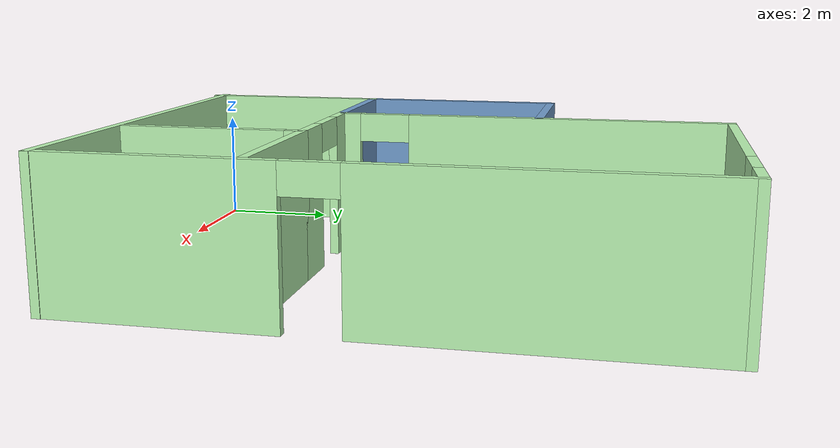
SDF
<?xml version='1.0'?>
<sdf version='1.6'>
  <model name='Kanaloa_Lab_v2'>
    <pose frame=''>3.77022 4.85008 0 0 -0 0</pose>
    <link name='Wall_11'>
      <pose frame=''>-0.155222 -1.75008 0 0 -0 0</pose>
      <visual name='Wall_11_Visual_0'>
        <pose frame=''>-0.911457 0 1.25 0 -0 0</pose>
        <geometry>
          <box>
            <size>0.677085 0.15 2.5</size>
          </box>
        </geometry>
        <material>
          <script>
            <uri>file://media/materials/scripts/gazebo.material</uri>
            <name>Gazebo/Grey</name>
          </script>
          <ambient>0.741176 0.972549 0.709804 1</ambient>
        </material>
        <meta>
          <layer>0</layer>
        </meta>
      </visual>
      <collision name='Wall_11_Collision_0'>
        <geometry>
          <box>
            <size>0.677085 0.15 2.5</size>
          </box>
        </geometry>
        <pose frame=''>-0.911457 0 1.25 0 -0 0</pose>
      </collision>
      <visual name='Wall_11_Visual_1'>
        <pose frame=''>0.788543 0 1.25 0 -0 0</pose>
        <geometry>
          <box>
            <size>0.922915 0.15 2.5</size>
          </box>
        </geometry>
        <material>
          <script>
            <uri>file://media/materials/scripts/gazebo.material</uri>
            <name>Gazebo/Grey</name>
          </script>
          <ambient>0.741176 0.972549 0.709804 1</ambient>
        </material>
        <meta>
          <layer>0</layer>
        </meta>
      </visual>
      <collision name='Wall_11_Collision_1'>
        <geometry>
          <box>
            <size>0.922915 0.15 2.5</size>
          </box>
        </geometry>
        <pose frame=''>0.788543 0 1.25 0 -0 0</pose>
      </collision>
      <visual name='Wall_11_Visual_2'>
        <pose frame=''>-0.122915 0 2.25 0 -0 0</pose>
        <geometry>
          <box>
            <size>0.9 0.15 0.5</size>
          </box>
        </geometry>
        <material>
          <script>
            <uri>file://media/materials/scripts/gazebo.material</uri>
            <name>Gazebo/Grey</name>
          </script>
          <ambient>0.741176 0.972549 0.709804 1</ambient>
        </material>
        <meta>
          <layer>0</layer>
        </meta>
      </visual>
      <collision name='Wall_11_Collision_2'>
        <geometry>
          <box>
            <size>0.9 0.15 0.5</size>
          </box>
        </geometry>
        <pose frame=''>-0.122915 0 2.25 0 -0 0</pose>
      </collision>
    </link>
    <link name='Wall_12'>
      <pose frame=''>1.01978 -3.30008 0 0 -0 -1.5708</pose>
      <visual name='Wall_12_Visual_0'>
        <pose frame=''>-1.44127 0 1.25 0 -0 0</pose>
        <geometry>
          <box>
            <size>0.367459 0.15 2.5</size>
          </box>
        </geometry>
        <material>
          <script>
            <uri>file://media/materials/scripts/gazebo.material</uri>
            <name>Gazebo/Grey</name>
          </script>
          <ambient>0.741176 0.972549 0.709804 1</ambient>
        </material>
        <meta>
          <layer>0</layer>
        </meta>
      </visual>
      <collision name='Wall_12_Collision_0'>
        <geometry>
          <box>
            <size>0.367459 0.15 2.5</size>
          </box>
        </geometry>
        <pose frame=''>-1.44127 0 1.25 0 -0 0</pose>
      </collision>
      <visual name='Wall_12_Visual_1'>
        <pose frame=''>0.63373 0 1.25 0 -0 0</pose>
        <geometry>
          <box>
            <size>1.98254 0.15 2.5</size>
          </box>
        </geometry>
        <material>
          <script>
            <uri>file://media/materials/scripts/gazebo.material</uri>
            <name>Gazebo/Grey</name>
          </script>
          <ambient>0.741176 0.972549 0.709804 1</ambient>
        </material>
        <meta>
          <layer>0</layer>
        </meta>
      </visual>
      <collision name='Wall_12_Collision_1'>
        <geometry>
          <box>
            <size>1.98254 0.15 2.5</size>
          </box>
        </geometry>
        <pose frame=''>0.63373 0 1.25 0 -0 0</pose>
      </collision>
      <visual name='Wall_12_Visual_2'>
        <pose frame=''>-0.807541 0 2.25 0 -0 0</pose>
        <geometry>
          <box>
            <size>0.9 0.15 0.5</size>
          </box>
        </geometry>
        <material>
          <script>
            <uri>file://media/materials/scripts/gazebo.material</uri>
            <name>Gazebo/Grey</name>
          </script>
          <ambient>0.741176 0.972549 0.709804 1</ambient>
        </material>
        <meta>
          <layer>0</layer>
        </meta>
      </visual>
      <collision name='Wall_12_Collision_2'>
        <geometry>
          <box>
            <size>0.9 0.15 0.5</size>
          </box>
        </geometry>
        <pose frame=''>-0.807541 0 2.25 0 -0 0</pose>
      </collision>
    </link>
    <link name='Wall_14'>
      <collision name='Wall_14_Collision'>
        <geometry>
          <box>
            <size>3.75 0.15 2.5</size>
          </box>
        </geometry>
        <pose frame=''>0 0 1.25 0 -0 0</pose>
      </collision>
      <visual name='Wall_14_Visual'>
        <pose frame=''>0 0 1.25 0 -0 0</pose>
        <geometry>
          <box>
            <size>3.75 0.15 2.5</size>
          </box>
        </geometry>
        <material>
          <script>
            <uri>file://media/materials/scripts/gazebo.material</uri>
            <name>Gazebo/Grey</name>
          </script>
          <ambient>0.447059 0.623529 0.811765 1</ambient>
        </material>
        <meta>
          <layer>0</layer>
        </meta>
      </visual>
      <pose frame=''>-3.68022 0.049917 0 0 -0 1.5708</pose>
    </link>
    <link name='Wall_15'>
      <collision name='Wall_15_Collision'>
        <geometry>
          <box>
            <size>2.5 0.15 2.5</size>
          </box>
        </geometry>
        <pose frame=''>0 0 1.25 0 -0 0</pose>
      </collision>
      <visual name='Wall_15_Visual'>
        <pose frame=''>0 0 1.25 0 -0 0</pose>
        <geometry>
          <box>
            <size>2.5 0.15 2.5</size>
          </box>
        </geometry>
        <material>
          <script>
            <uri>file://media/materials/scripts/gazebo.material</uri>
            <name>Gazebo/Grey</name>
          </script>
          <ambient>0.447059 0.623529 0.811765 1</ambient>
        </material>
        <meta>
          <layer>0</layer>
        </meta>
      </visual>
      <pose frame=''>-2.50522 1.84992 0 0 -0 0</pose>
    </link>
    <link name='Wall_17'>
      <collision name='Wall_17_Collision'>
        <geometry>
          <box>
            <size>2.75 0.15 2.5</size>
          </box>
        </geometry>
        <pose frame=''>0 0 1.25 0 -0 0</pose>
      </collision>
      <visual name='Wall_17_Visual'>
        <pose frame=''>0 0 1.25 0 -0 0</pose>
        <geometry>
          <box>
            <size>2.75 0.15 2.5</size>
          </box>
        </geometry>
        <material>
          <script>
            <uri>file://media/materials/scripts/gazebo.material</uri>
            <name>Gazebo/Grey</name>
          </script>
          <ambient>0.741176 0.972549 0.709804 1</ambient>
        </material>
        <meta>
          <layer>0</layer>
        </meta>
      </visual>
      <pose frame=''>2.31978 -1.75008 0 0 -0 0</pose>
    </link>
    <link name='Wall_4'>
      <collision name='Wall_4_Collision'>
        <geometry>
          <box>
            <size>7.71 0.15 2.5</size>
          </box>
        </geometry>
        <pose frame=''>0 0 1.25 0 -0 0</pose>
      </collision>
      <visual name='Wall_4_Visual'>
        <pose frame=''>0 0 1.25 0 -0 0</pose>
        <geometry>
          <box>
            <size>7.71 0.15 2.5</size>
          </box>
        </geometry>
        <material>
          <script>
            <uri>file://media/materials/scripts/gazebo.material</uri>
            <name>Gazebo/Grey</name>
          </script>
          <ambient>0.741176 0.972549 0.709804 1</ambient>
        </material>
        <meta>
          <layer>0</layer>
        </meta>
      </visual>
      <pose frame=''>0 -4.98986 0 0 -0 0</pose>
    </link>
    <link name='Wall_5'>
      <pose frame=''>3.76978 0.055028 0 0 -0 1.5708</pose>
      <visual name='Wall_5_Visual_0'>
        <pose frame=''>-3.19311 0 1.25 0 -0 0</pose>
        <geometry>
          <box>
            <size>3.85389 0.15 2.5</size>
          </box>
        </geometry>
        <material>
          <script>
            <uri>file://media/materials/scripts/gazebo.material</uri>
            <name>Gazebo/Grey</name>
          </script>
          <ambient>0.741176 0.972549 0.709804 1</ambient>
        </material>
        <meta>
          <layer>0</layer>
        </meta>
      </visual>
      <collision name='Wall_5_Collision_0'>
        <geometry>
          <box>
            <size>3.85389 0.15 2.5</size>
          </box>
        </geometry>
        <pose frame=''>-3.19311 0 1.25 0 -0 0</pose>
      </collision>
      <visual name='Wall_5_Visual_1'>
        <pose frame=''>2.37694 0 1.25 0 -0 0</pose>
        <geometry>
          <box>
            <size>5.48622 0.15 2.5</size>
          </box>
        </geometry>
        <material>
          <script>
            <uri>file://media/materials/scripts/gazebo.material</uri>
            <name>Gazebo/Grey</name>
          </script>
          <ambient>0.741176 0.972549 0.709804 1</ambient>
        </material>
        <meta>
          <layer>0</layer>
        </meta>
      </visual>
      <collision name='Wall_5_Collision_1'>
        <geometry>
          <box>
            <size>5.48622 0.15 2.5</size>
          </box>
        </geometry>
        <pose frame=''>2.37694 0 1.25 0 -0 0</pose>
      </collision>
      <visual name='Wall_5_Visual_2'>
        <pose frame=''>-0.81617 0 2.25 0 -0 0</pose>
        <geometry>
          <box>
            <size>0.9 0.15 0.5</size>
          </box>
        </geometry>
        <material>
          <script>
            <uri>file://media/materials/scripts/gazebo.material</uri>
            <name>Gazebo/Grey</name>
          </script>
          <ambient>0.741176 0.972549 0.709804 1</ambient>
        </material>
        <meta>
          <layer>0</layer>
        </meta>
      </visual>
      <collision name='Wall_5_Collision_2'>
        <geometry>
          <box>
            <size>0.9 0.15 0.5</size>
          </box>
        </geometry>
        <pose frame=''>-0.81617 0 2.25 0 -0 0</pose>
      </collision>
    </link>
    <link name='Wall_6'>
      <pose frame=''>1.21978 5.09992 0 0 -0 3.14159</pose>
      <visual name='Wall_6_Visual_0'>
        <pose frame=''>-2.20984 0 1.25 0 -0 0</pose>
        <geometry>
          <box>
            <size>0.830327 0.15 2.5</size>
          </box>
        </geometry>
        <material>
          <script>
            <uri>file://media/materials/scripts/gazebo.material</uri>
            <name>Gazebo/Grey</name>
          </script>
          <ambient>0.741176 0.972549 0.709804 1</ambient>
        </material>
        <meta>
          <layer>0</layer>
        </meta>
      </visual>
      <collision name='Wall_6_Collision_0'>
        <geometry>
          <box>
            <size>0.830327 0.15 2.5</size>
          </box>
        </geometry>
        <pose frame=''>-2.20984 0 1.25 0 -0 0</pose>
      </collision>
      <visual name='Wall_6_Visual_1'>
        <pose frame=''>0.865164 0 1.25 0 -0 0</pose>
        <geometry>
          <box>
            <size>3.51967 0.15 2.5</size>
          </box>
        </geometry>
        <material>
          <script>
            <uri>file://media/materials/scripts/gazebo.material</uri>
            <name>Gazebo/Grey</name>
          </script>
          <ambient>0.741176 0.972549 0.709804 1</ambient>
        </material>
        <meta>
          <layer>0</layer>
        </meta>
      </visual>
      <collision name='Wall_6_Collision_1'>
        <geometry>
          <box>
            <size>3.51967 0.15 2.5</size>
          </box>
        </geometry>
        <pose frame=''>0.865164 0 1.25 0 -0 0</pose>
      </collision>
      <visual name='Wall_6_Visual_2'>
        <pose frame=''>-1.34467 0 2.25 0 -0 0</pose>
        <geometry>
          <box>
            <size>0.9 0.15 0.5</size>
          </box>
        </geometry>
        <material>
          <script>
            <uri>file://media/materials/scripts/gazebo.material</uri>
            <name>Gazebo/Grey</name>
          </script>
          <ambient>0.741176 0.972549 0.709804 1</ambient>
        </material>
        <meta>
          <layer>0</layer>
        </meta>
      </visual>
      <collision name='Wall_6_Collision_2'>
        <geometry>
          <box>
            <size>0.9 0.15 0.5</size>
          </box>
        </geometry>
        <pose frame=''>-1.34467 0 2.25 0 -0 0</pose>
      </collision>
    </link>
    <link name='Wall_7'>
      <pose frame=''>-1.33022 1.67492 0 0 -0 -1.5708</pose>
      <visual name='Wall_7_Visual_0'>
        <pose frame=''>-0.671947 0 1.25 0 -0 0</pose>
        <geometry>
          <box>
            <size>5.65611 0.15 2.5</size>
          </box>
        </geometry>
        <material>
          <script>
            <uri>file://media/materials/scripts/gazebo.material</uri>
            <name>Gazebo/Grey</name>
          </script>
          <ambient>0.741176 0.972549 0.709804 1</ambient>
        </material>
        <meta>
          <layer>0</layer>
        </meta>
      </visual>
      <collision name='Wall_7_Collision_0'>
        <geometry>
          <box>
            <size>5.65611 0.15 2.5</size>
          </box>
        </geometry>
        <pose frame=''>-0.671947 0 1.25 0 -0 0</pose>
      </collision>
      <visual name='Wall_7_Visual_1'>
        <pose frame=''>3.27805 0 1.25 0 -0 0</pose>
        <geometry>
          <box>
            <size>0.443893 0.15 2.5</size>
          </box>
        </geometry>
        <material>
          <script>
            <uri>file://media/materials/scripts/gazebo.material</uri>
            <name>Gazebo/Grey</name>
          </script>
          <ambient>0.741176 0.972549 0.709804 1</ambient>
        </material>
        <meta>
          <layer>0</layer>
        </meta>
      </visual>
      <collision name='Wall_7_Collision_1'>
        <geometry>
          <box>
            <size>0.443893 0.15 2.5</size>
          </box>
        </geometry>
        <pose frame=''>3.27805 0 1.25 0 -0 0</pose>
      </collision>
      <visual name='Wall_7_Visual_2'>
        <pose frame=''>2.60611 0 2.25 0 -0 0</pose>
        <geometry>
          <box>
            <size>0.9 0.15 0.5</size>
          </box>
        </geometry>
        <material>
          <script>
            <uri>file://media/materials/scripts/gazebo.material</uri>
            <name>Gazebo/Grey</name>
          </script>
          <ambient>0.741176 0.972549 0.709804 1</ambient>
        </material>
        <meta>
          <layer>0</layer>
        </meta>
      </visual>
      <collision name='Wall_7_Collision_2'>
        <geometry>
          <box>
            <size>0.9 0.15 0.5</size>
          </box>
        </geometry>
        <pose frame=''>2.60611 0 2.25 0 -0 0</pose>
      </collision>
    </link>
    <link name='Wall_8'>
      <collision name='Wall_8_Collision'>
        <geometry>
          <box>
            <size>2.5 0.15 2.5</size>
          </box>
        </geometry>
        <pose frame=''>0 0 1.25 0 -0 0</pose>
      </collision>
      <visual name='Wall_8_Visual'>
        <pose frame=''>0 0 1.25 0 -0 0</pose>
        <geometry>
          <box>
            <size>2.5 0.15 2.5</size>
          </box>
        </geometry>
        <material>
          <script>
            <uri>file://media/materials/scripts/gazebo.material</uri>
            <name>Gazebo/Grey</name>
          </script>
          <ambient>0.447059 0.623529 0.811765 1</ambient>
        </material>
        <meta>
          <layer>0</layer>
        </meta>
      </visual>
      <pose frame=''>-2.50522 -1.75008 0 0 -0 3.14159</pose>
    </link>
    <link name='Wall_9'>
      <collision name='Wall_9_Collision'>
        <geometry>
          <box>
            <size>3.5 0.15 2.5</size>
          </box>
        </geometry>
        <pose frame=''>0 0 1.25 0 -0 0</pose>
      </collision>
      <visual name='Wall_9_Visual'>
        <pose frame=''>0 0 1.25 0 -0 0</pose>
        <geometry>
          <box>
            <size>3.5 0.15 2.5</size>
          </box>
        </geometry>
        <material>
          <script>
            <uri>file://media/materials/scripts/gazebo.material</uri>
            <name>Gazebo/Grey</name>
          </script>
          <ambient>0.741176 0.972549 0.709804 1</ambient>
        </material>
        <meta>
          <layer>0</layer>
        </meta>
      </visual>
      <pose frame=''>-3.68022 -3.42508 0 0 -0 -1.5708</pose>
    </link>
    <static>1</static>
  </model>
</sdf>
